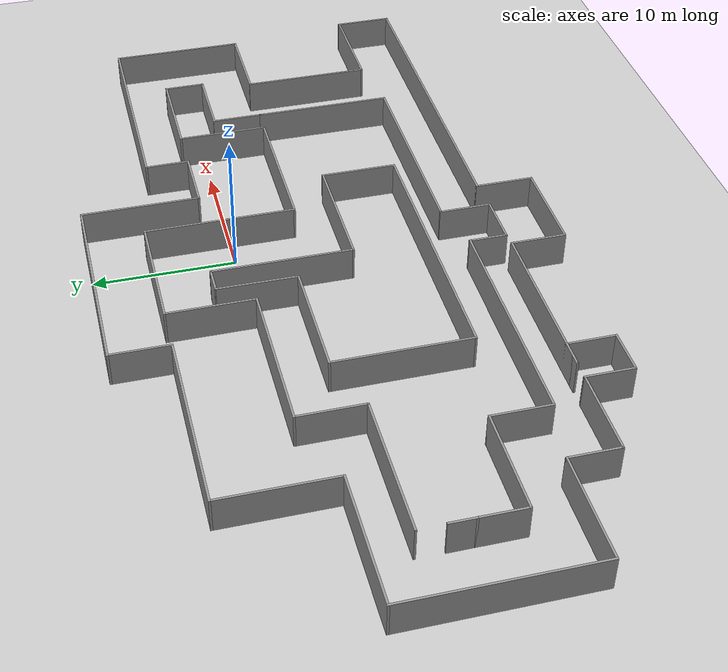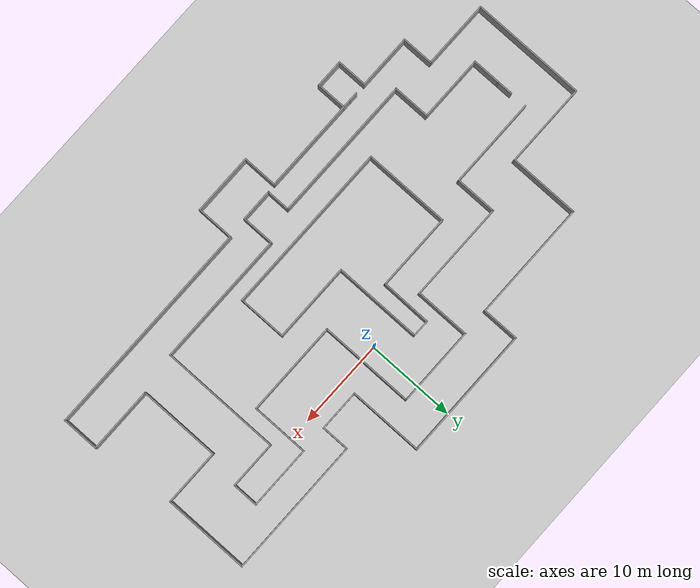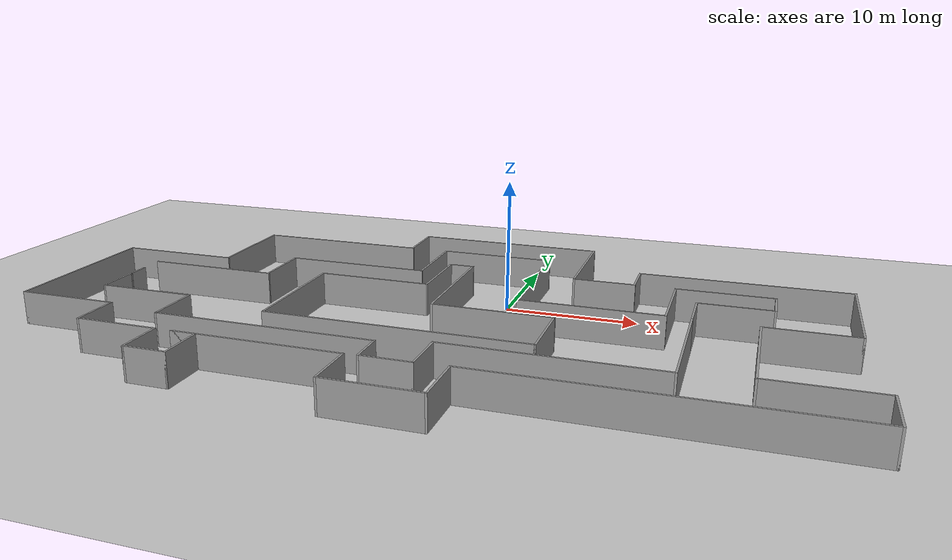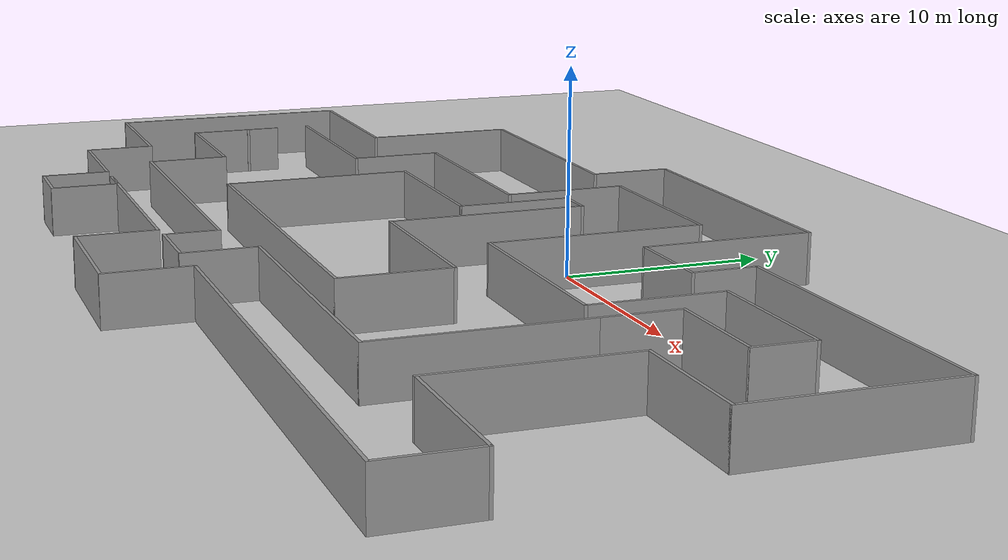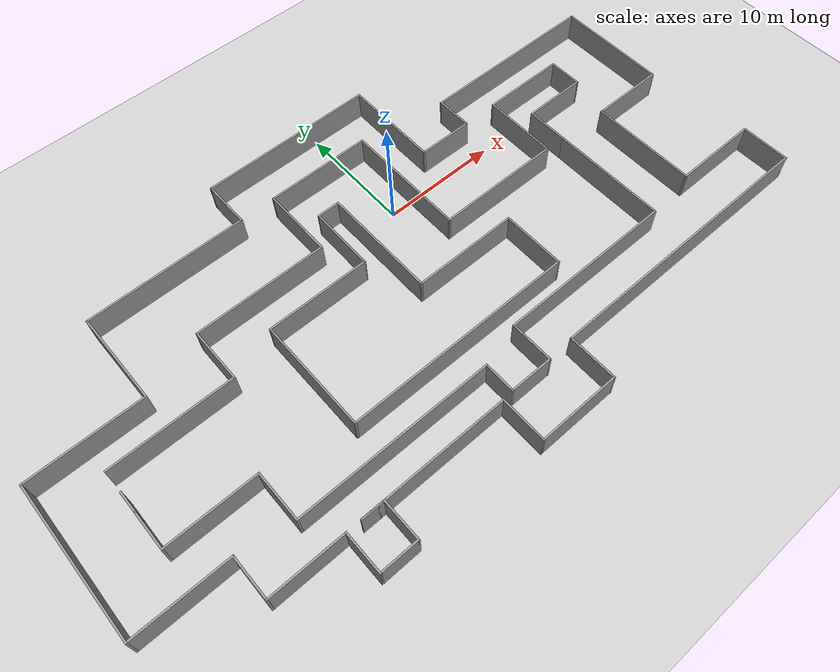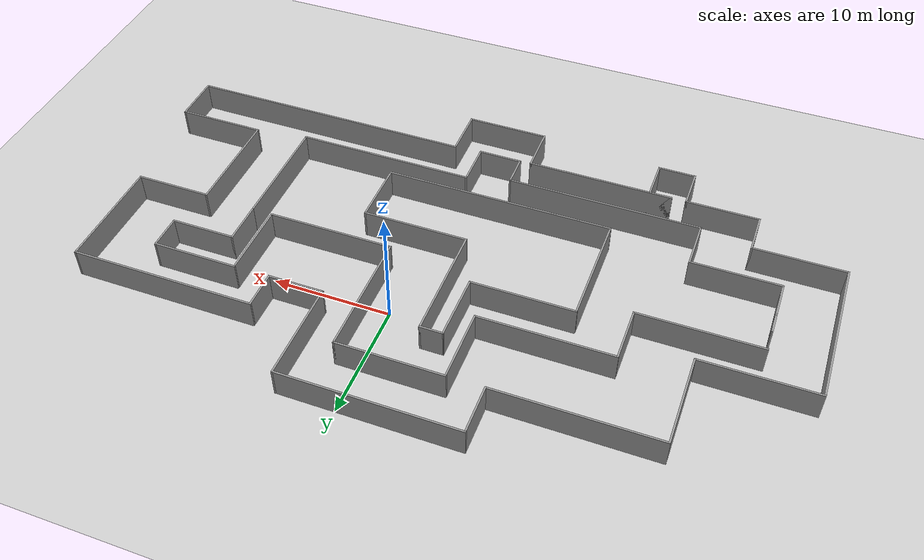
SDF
<sdf version="1.6">
 <world name="default">
  <light name="sun" type="directional">
   <pose>0 0 10 0 -0 0</pose>
   <diffuse>0.8 0.8 0.8 1</diffuse>
   <specular>0.2 0.2 0.2 1</specular>
   <attenuation>
    <range>1000</range>
    <constant>0.9</constant>
    <linear>0.01</linear>
    <quadratic>0.001</quadratic>
   </attenuation>
   <direction>-0.5 0.1 -0.9</direction>
  </light>
  <model name="ground_plane">
   <static>1</static>
   <link name="link">
    <collision name="collision">
     <geometry><plane><normal>0 0 1</normal><size>100 100</size></plane></geometry>
     <surface><friction><ode><mu>100</mu><mu2>50</mu2></ode></friction></surface>
    </collision>
    <visual name="visual">
     <cast_shadows>0</cast_shadows>
     <geometry><plane><normal>0 0 1</normal><size>100 100</size></plane></geometry>
     <material>
      <script><uri>file://media/materials/scripts/gazebo.material</uri><name>Gazebo/Grey</name></script>
     </material>
    </visual>
   </link>
  </model>
  <gravity>0 0 -9.8</gravity>
  <magnetic_field>6e-06 2.3e-05 -4.2e-05</magnetic_field>
  <atmosphere type="adiabatic"/>
  <physics name="default_physics" default="0" type="ode">
   <max_step_size>0.001</max_step_size>
   <real_time_factor>1</real_time_factor>
   <real_time_update_rate>1000</real_time_update_rate>
  </physics>
  <scene><ambient>0.4 0.4 0.4 1</ambient><background>0.7 0.7 0.7 1</background><shadows>1</shadows></scene>
  <audio><device>default</device></audio>
  <spherical_coordinates>
   <surface_model>EARTH_WGS84</surface_model>
   <latitude_deg>0</latitude_deg>
   <longitude_deg>0</longitude_deg>
   <elevation>0</elevation>
   <heading_deg>0</heading_deg>
  </spherical_coordinates>
  <model name="Untitled">
   <pose>-3.37299 -6.07161 0 0 -0 0</pose>
   <link name="Wall_35">
    <collision name="Wall_35_Collision">
     <geometry><box><size>6.25 0.15 2.5</size></box></geometry>
     <pose>0 0 1.25 0 -0 0</pose>
    </collision>
    <visual name="Wall_35_Visual">
     <pose>0 0 1.25 0 -0 0</pose>
     <geometry><box><size>6.25 0.15 2.5</size></box></geometry>
     <material>
      <script><uri>file://media/materials/scripts/gazebo.material</uri><name>Gazebo/Grey</name></script>
      <ambient>1 1 1 1</ambient>
     </material>
     <meta><layer>0</layer></meta>
    </visual>
    <pose>-18.725 -12.225 0 0 -0 0</pose>
   </link>
   <link name="Wall_36">
    <collision name="Wall_36_Collision">
     <geometry><box><size>3.5 0.15 2.5</size></box></geometry>
     <pose>0 0 1.25 0 -0 0</pose>
    </collision>
    <visual name="Wall_36_Visual">
     <pose>0 0 1.25 0 -0 0</pose>
     <geometry><box><size>3.5 0.15 2.5</size></box></geometry>
     <material>
      <script><uri>file://media/materials/scripts/gazebo.material</uri><name>Gazebo/Grey</name></script>
      <ambient>1 1 1 1</ambient>
     </material>
     <meta><layer>0</layer></meta>
    </visual>
    <pose>-15.675 -13.9 0 0 -0 -1.5708</pose>
   </link>
   <link name="Wall_37">
    <collision name="Wall_37_Collision">
     <geometry><box><size>3.25 0.15 2.5</size></box></geometry>
     <pose>0 0 1.25 0 -0 0</pose>
    </collision>
    <visual name="Wall_37_Visual">
     <pose>0 0 1.25 0 -0 0</pose>
     <geometry><box><size>3.25 0.15 2.5</size></box></geometry>
     <material>
      <script><uri>file://media/materials/scripts/gazebo.material</uri><name>Gazebo/Grey</name></script>
      <ambient>1 1 1 1</ambient>
     </material>
     <meta><layer>0</layer></meta>
    </visual>
    <pose>-14.125 -15.575 0 0 -0 0</pose>
   </link>
   <link name="Wall_38">
    <collision name="Wall_38_Collision">
     <geometry><box><size>3.5 0.15 2.5</size></box></geometry>
     <pose>0 0 1.25 0 -0 0</pose>
    </collision>
    <visual name="Wall_38_Visual">
     <pose>0 0 1.25 0 -0 0</pose>
     <geometry><box><size>3.5 0.15 2.5</size></box></geometry>
     <material>
      <script><uri>file://media/materials/scripts/gazebo.material</uri><name>Gazebo/Grey</name></script>
      <ambient>1 1 1 1</ambient>
     </material>
     <meta><layer>0</layer></meta>
    </visual>
    <pose>-12.575 -13.9 0 0 -0 1.5708</pose>
   </link>
   <link name="Wall_39">
    <collision name="Wall_39_Collision">
     <geometry><box><size>2 0.15 2.5</size></box></geometry>
     <pose>0 0 1.25 0 -0 0</pose>
    </collision>
    <visual name="Wall_39_Visual">
     <pose>0 0 1.25 0 -0 0</pose>
     <geometry><box><size>2 0.15 2.5</size></box></geometry>
     <material>
      <script><uri>file://media/materials/scripts/gazebo.material</uri><name>Gazebo/Grey</name></script>
      <ambient>1 1 1 1</ambient>
     </material>
     <meta><layer>0</layer></meta>
    </visual>
    <pose>-13.5 -12.225 0 0 -0 3.14159</pose>
   </link>
   <link name="Wall_40">
    <collision name="Wall_40_Collision">
     <geometry><box><size>12.5 0.15 2.5</size></box></geometry>
     <pose>0 0 1.25 0 -0 0</pose>
    </collision>
    <visual name="Wall_40_Visual">
     <pose>0 0 1.25 0 -0 0</pose>
     <geometry><box><size>12.5 0.15 2.5</size></box></geometry>
     <material>
      <script><uri>file://media/materials/scripts/gazebo.material</uri><name>Gazebo/Grey</name></script>
      <ambient>1 1 1 1</ambient>
     </material>
     <meta><layer>0</layer></meta>
    </visual>
    <pose>-8.25 -12.225 0 0 -0 0</pose>
   </link>
   <link name="Wall_41">
    <collision name="Wall_41_Collision">
     <geometry><box><size>4 0.15 2.5</size></box></geometry>
     <pose>0 0 1.25 0 -0 0</pose>
    </collision>
    <visual name="Wall_41_Visual">
     <pose>0 0 1.25 0 -0 0</pose>
     <geometry><box><size>4 0.15 2.5</size></box></geometry>
     <material>
      <script><uri>file://media/materials/scripts/gazebo.material</uri><name>Gazebo/Grey</name></script>
      <ambient>1 1 1 1</ambient>
     </material>
     <meta><layer>0</layer></meta>
    </visual>
    <pose>-2.075 -14.15 0 0 -0 -1.5708</pose>
   </link>
   <link name="Wall_42">
    <collision name="Wall_42_Collision">
     <geometry><box><size>7 0.15 2.5</size></box></geometry>
     <pose>0 0 1.25 0 -0 0</pose>
    </collision>
    <visual name="Wall_42_Visual">
     <pose>0 0 1.25 0 -0 0</pose>
     <geometry><box><size>7 0.15 2.5</size></box></geometry>
     <material>
      <script><uri>file://media/materials/scripts/gazebo.material</uri><name>Gazebo/Grey</name></script>
      <ambient>1 1 1 1</ambient>
     </material>
     <meta><layer>0</layer></meta>
    </visual>
    <pose>1.35 -16.075 0 0 -0 0</pose>
   </link>
   <link name="Wall_43">
    <collision name="Wall_43_Collision">
     <geometry><box><size>4.25 0.15 2.5</size></box></geometry>
     <pose>0 0 1.25 0 -0 0</pose>
    </collision>
    <visual name="Wall_43_Visual">
     <pose>0 0 1.25 0 -0 0</pose>
     <geometry><box><size>4.25 0.15 2.5</size></box></geometry>
     <material>
      <script><uri>file://media/materials/scripts/gazebo.material</uri><name>Gazebo/Grey</name></script>
      <ambient>1 1 1 1</ambient>
     </material>
     <meta><layer>0</layer></meta>
    </visual>
    <pose>4.775 -14.025 0 0 -0 1.5708</pose>
   </link>
   <link name="Wall_44">
    <collision name="Wall_44_Collision">
     <geometry><box><size>24.75 0.15 2.5</size></box></geometry>
     <pose>0 0 1.25 0 -0 0</pose>
    </collision>
    <visual name="Wall_44_Visual">
     <pose>0 0 1.25 0 -0 0</pose>
     <geometry><box><size>24.75 0.15 2.5</size></box></geometry>
     <material>
      <script><uri>file://media/materials/scripts/gazebo.material</uri><name>Gazebo/Grey</name></script>
      <ambient>1 1 1 1</ambient>
     </material>
     <meta><layer>0</layer></meta>
    </visual>
    <pose>17.075 -11.975 0 0 -0 0</pose>
   </link>
   <link name="Wall_45">
    <collision name="Wall_45_Collision">
     <geometry><box><size>4.25 0.15 2.5</size></box></geometry>
     <pose>0 0 1.25 0 -0 0</pose>
    </collision>
    <visual name="Wall_45_Visual">
     <pose>0 0 1.25 0 -0 0</pose>
     <geometry><box><size>4.25 0.15 2.5</size></box></geometry>
     <material>
      <script><uri>file://media/materials/scripts/gazebo.material</uri><name>Gazebo/Grey</name></script>
      <ambient>1 1 1 1</ambient>
     </material>
     <meta><layer>0</layer></meta>
    </visual>
    <pose>29.375 -9.925 0 0 -0 1.5708</pose>
   </link>
   <link name="Wall_46">
    <collision name="Wall_46_Collision">
     <geometry><box><size>7.5 0.15 2.5</size></box></geometry>
     <pose>0 0 1.25 0 -0 0</pose>
    </collision>
    <visual name="Wall_46_Visual">
     <pose>0 0 1.25 0 -0 0</pose>
     <geometry><box><size>7.5 0.15 2.5</size></box></geometry>
     <material>
      <script><uri>file://media/materials/scripts/gazebo.material</uri><name>Gazebo/Grey</name></script>
      <ambient>1 1 1 1</ambient>
     </material>
     <meta><layer>0</layer></meta>
    </visual>
    <pose>25.7 -7.875 0 0 -0 3.14159</pose>
   </link>
   <link name="Wall_47">
    <collision name="Wall_47_Collision">
     <geometry><box><size>9.25 0.15 2.5</size></box></geometry>
     <pose>0 0 1.25 0 -0 0</pose>
    </collision>
    <visual name="Wall_47_Visual">
     <pose>0 0 1.25 0 -0 0</pose>
     <geometry><box><size>9.25 0.15 2.5</size></box></geometry>
     <material>
      <script><uri>file://media/materials/scripts/gazebo.material</uri><name>Gazebo/Grey</name></script>
      <ambient>1 1 1 1</ambient>
     </material>
     <meta><layer>0</layer></meta>
    </visual>
    <pose>22.025 -3.325 0 0 -0 1.5708</pose>
   </link>
   <link name="Wall_48">
    <collision name="Wall_48_Collision">
     <geometry><box><size>6.5 0.15 2.5</size></box></geometry>
     <pose>0 0 1.25 0 -0 0</pose>
    </collision>
    <visual name="Wall_48_Visual">
     <pose>0 0 1.25 0 -0 0</pose>
     <geometry><box><size>6.5 0.15 2.5</size></box></geometry>
     <material>
      <script><uri>file://media/materials/scripts/gazebo.material</uri><name>Gazebo/Grey</name></script>
      <ambient>1 1 1 1</ambient>
     </material>
     <meta><layer>0</layer></meta>
    </visual>
    <pose>25.2 1.225 0 0 -0 0</pose>
   </link>
   <link name="Wall_49">
    <collision name="Wall_49_Collision">
     <geometry><box><size>9.75 0.15 2.5</size></box></geometry>
     <pose>0 0 1.25 0 -0 0</pose>
    </collision>
    <visual name="Wall_49_Visual">
     <pose>0 0 1.25 0 -0 0</pose>
     <geometry><box><size>9.75 0.15 2.5</size></box></geometry>
     <material>
      <script><uri>file://media/materials/scripts/gazebo.material</uri><name>Gazebo/Grey</name></script>
      <ambient>1 1 1 1</ambient>
     </material>
     <meta><layer>0</layer></meta>
    </visual>
    <pose>28.375 6.025 0 0 -0 1.5708</pose>
   </link>
   <link name="Wall_50">
    <collision name="Wall_50_Collision">
     <geometry><box><size>15.75 0.15 2.5</size></box></geometry>
     <pose>0 0 1.25 0 -0 0</pose>
    </collision>
    <visual name="Wall_50_Visual">
     <pose>0 0 1.25 0 -0 0</pose>
     <geometry><box><size>15.75 0.15 2.5</size></box></geometry>
     <material>
      <script><uri>file://media/materials/scripts/gazebo.material</uri><name>Gazebo/Grey</name></script>
      <ambient>1 1 1 1</ambient>
     </material>
     <meta><layer>0</layer></meta>
    </visual>
    <pose>20.575 10.825 0 0 -0 3.14159</pose>
   </link>
   <link name="Wall_51">
    <collision name="Wall_51_Collision">
     <geometry><box><size>3.25 0.15 2.5</size></box></geometry>
     <pose>0 0 1.25 0 -0 0</pose>
    </collision>
    <visual name="Wall_51_Visual">
     <pose>0 0 1.25 0 -0 0</pose>
     <geometry><box><size>3.25 0.15 2.5</size></box></geometry>
     <material>
      <script><uri>file://media/materials/scripts/gazebo.material</uri><name>Gazebo/Grey</name></script>
      <ambient>1 1 1 1</ambient>
     </material>
     <meta><layer>0</layer></meta>
    </visual>
    <pose>12.775 9.275 0 0 -0 -1.5708</pose>
   </link>
   <link name="Wall_52">
    <collision name="Wall_52_Collision">
     <geometry><box><size>4.75 0.15 2.5</size></box></geometry>
     <pose>0 0 1.25 0 -0 0</pose>
    </collision>
    <visual name="Wall_52_Visual">
     <pose>0 0 1.25 0 -0 0</pose>
     <geometry><box><size>4.75 0.15 2.5</size></box></geometry>
     <material>
      <script><uri>file://media/materials/scripts/gazebo.material</uri><name>Gazebo/Grey</name></script>
      <ambient>1 1 1 1</ambient>
     </material>
     <meta><layer>0</layer></meta>
    </visual>
    <pose>10.475 7.725 0 0 -0 3.14159</pose>
   </link>
   <link name="Wall_53">
    <collision name="Wall_53_Collision">
     <geometry><box><size>8.5 0.15 2.5</size></box></geometry>
     <pose>0 0 1.25 0 -0 0</pose>
    </collision>
    <visual name="Wall_53_Visual">
     <pose>0 0 1.25 0 -0 0</pose>
     <geometry><box><size>8.5 0.15 2.5</size></box></geometry>
     <material>
      <script><uri>file://media/materials/scripts/gazebo.material</uri><name>Gazebo/Grey</name></script>
      <ambient>1 1 1 1</ambient>
     </material>
     <meta><layer>0</layer></meta>
    </visual>
    <pose>8.175 11.9 0 0 -0 1.5708</pose>
   </link>
   <link name="Wall_54">
    <collision name="Wall_54_Collision">
     <geometry><box><size>15 0.15 2.5</size></box></geometry>
     <pose>0 0 1.25 0 -0 0</pose>
    </collision>
    <visual name="Wall_54_Visual">
     <pose>0 0 1.25 0 -0 0</pose>
     <geometry><box><size>15 0.15 2.5</size></box></geometry>
     <material>
      <script><uri>file://media/materials/scripts/gazebo.material</uri><name>Gazebo/Grey</name></script>
      <ambient>1 1 1 1</ambient>
     </material>
     <meta><layer>0</layer></meta>
    </visual>
    <pose>0.75 16.075 0 0 -0 3.14159</pose>
   </link>
   <link name="Wall_55">
    <collision name="Wall_55_Collision">
     <geometry><box><size>4.25 0.15 2.5</size></box></geometry>
     <pose>0 0 1.25 0 -0 0</pose>
    </collision>
    <visual name="Wall_55_Visual">
     <pose>0 0 1.25 0 -0 0</pose>
     <geometry><box><size>4.25 0.15 2.5</size></box></geometry>
     <material>
      <script><uri>file://media/materials/scripts/gazebo.material</uri><name>Gazebo/Grey</name></script>
      <ambient>1 1 1 1</ambient>
     </material>
     <meta><layer>0</layer></meta>
    </visual>
    <pose>-6.675 14.025 0 0 -0 -1.5708</pose>
   </link>
   <link name="Wall_56">
    <collision name="Wall_56_Collision">
     <geometry><box><size>13.5 0.15 2.5</size></box></geometry>
     <pose>0 0 1.25 0 -0 0</pose>
    </collision>
    <visual name="Wall_56_Visual">
     <pose>0 0 1.25 0 -0 0</pose>
     <geometry><box><size>13.5 0.15 2.5</size></box></geometry>
     <material>
      <script><uri>file://media/materials/scripts/gazebo.material</uri><name>Gazebo/Grey</name></script>
      <ambient>1 1 1 1</ambient>
     </material>
     <meta><layer>0</layer></meta>
    </visual>
    <pose>-13.35 11.975 0 0 -0 3.14159</pose>
   </link>
   <link name="Wall_57">
    <collision name="Wall_57_Collision">
     <geometry><box><size>8 0.15 2.5</size></box></geometry>
     <pose>0 0 1.25 0 -0 0</pose>
    </collision>
    <visual name="Wall_57_Visual">
     <pose>0 0 1.25 0 -0 0</pose>
     <geometry><box><size>8 0.15 2.5</size></box></geometry>
     <material>
      <script><uri>file://media/materials/scripts/gazebo.material</uri><name>Gazebo/Grey</name></script>
      <ambient>1 1 1 1</ambient>
     </material>
     <meta><layer>0</layer></meta>
    </visual>
    <pose>-20.025 8.05 0 0 -0 -1.5708</pose>
   </link>
   <link name="Wall_58">
    <collision name="Wall_58_Collision">
     <geometry><box><size>9.5 0.15 2.5</size></box></geometry>
     <pose>0 0 1.25 0 -0 0</pose>
    </collision>
    <visual name="Wall_58_Visual">
     <pose>0 0 1.25 0 -0 0</pose>
     <geometry><box><size>9.5 0.15 2.5</size></box></geometry>
     <material>
      <script><uri>file://media/materials/scripts/gazebo.material</uri><name>Gazebo/Grey</name></script>
      <ambient>1 1 1 1</ambient>
     </material>
     <meta><layer>0</layer></meta>
    </visual>
    <pose>-24.7 4.125 0 0 -0 3.14159</pose>
   </link>
   <link name="Wall_59">
    <collision name="Wall_59_Collision">
     <geometry><box><size>13 0.15 2.5</size></box></geometry>
     <pose>0 0 1.25 0 -0 0</pose>
    </collision>
    <visual name="Wall_59_Visual">
     <pose>0 0 1.25 0 -0 0</pose>
     <geometry><box><size>13 0.15 2.5</size></box></geometry>
     <material>
      <script><uri>file://media/materials/scripts/gazebo.material</uri><name>Gazebo/Grey</name></script>
      <ambient>1 1 1 1</ambient>
     </material>
     <meta><layer>0</layer></meta>
    </visual>
    <pose>-29.375 -2.3 0 0 -0 -1.5708</pose>
   </link>
   <link name="Wall_60">
    <collision name="Wall_60_Collision">
     <geometry><box><size>7.75 0.15 2.5</size></box></geometry>
     <pose>0 0 1.25 0 -0 0</pose>
    </collision>
    <visual name="Wall_60_Visual">
     <pose>0 0 1.25 0 -0 0</pose>
     <geometry><box><size>7.75 0.15 2.5</size></box></geometry>
     <material>
      <script><uri>file://media/materials/scripts/gazebo.material</uri><name>Gazebo/Grey</name></script>
      <ambient>1 1 1 1</ambient>
     </material>
     <meta><layer>0</layer></meta>
    </visual>
    <pose>-25.575 -8.725 0 0 -0 0</pose>
   </link>
   <link name="Wall_61">
    <collision name="Wall_61_Collision">
     <geometry><box><size>3.65 0.15 2.5</size></box></geometry>
     <pose>0 0 1.25 0 -0 0</pose>
    </collision>
    <visual name="Wall_61_Visual">
     <pose>0 0 1.25 0 -0 0</pose>
     <geometry><box><size>3.65 0.15 2.5</size></box></geometry>
     <material>
      <script><uri>file://media/materials/scripts/gazebo.material</uri><name>Gazebo/Grey</name></script>
      <ambient>1 1 1 1</ambient>
     </material>
     <meta><layer>0</layer></meta>
    </visual>
    <pose>-21.775 -10.475 0 0 -0 -1.5708</pose>
   </link>
   <link name="Wall_63">
    <collision name="Wall_63_Collision">
     <geometry><box><size>5 0.15 2.5</size></box></geometry>
     <pose>0 0 1.25 0 -0 0</pose>
    </collision>
    <visual name="Wall_63_Visual">
     <pose>0 0 1.25 0 -0 0</pose>
     <geometry><box><size>5 0.15 2.5</size></box></geometry>
     <material>
      <script><uri>file://media/materials/scripts/gazebo.material</uri><name>Gazebo/Grey</name></script>
      <ambient>1 1 1 1</ambient>
     </material>
     <meta><layer>0</layer></meta>
    </visual>
    <pose>-24.8291 -3.01391 0 0 -0 -1.5708</pose>
   </link>
   <link name="Wall_64">
    <collision name="Wall_64_Collision">
     <geometry><box><size>7.5 0.15 2.5</size></box></geometry>
     <pose>0 0 1.25 0 -0 0</pose>
    </collision>
    <visual name="Wall_64_Visual">
     <pose>0 0 1.25 0 -0 0</pose>
     <geometry><box><size>7.5 0.15 2.5</size></box></geometry>
     <material>
      <script><uri>file://media/materials/scripts/gazebo.material</uri><name>Gazebo/Grey</name></script>
      <ambient>1 1 1 1</ambient>
     </material>
     <meta><layer>0</layer></meta>
    </visual>
    <pose>-21.1541 -5.43891 0 0 -0 0</pose>
   </link>
   <link name="Wall_65">
    <collision name="Wall_65_Collision">
     <geometry><box><size>4.25 0.15 2.5</size></box></geometry>
     <pose>0 0 1.25 0 -0 0</pose>
    </collision>
    <visual name="Wall_65_Visual">
     <pose>0 0 1.25 0 -0 0</pose>
     <geometry><box><size>4.25 0.15 2.5</size></box></geometry>
     <material>
      <script><uri>file://media/materials/scripts/gazebo.material</uri><name>Gazebo/Grey</name></script>
      <ambient>1 1 1 1</ambient>
     </material>
     <meta><layer>0</layer></meta>
    </visual>
    <pose>-17.4791 -7.48891 0 0 -0 -1.5708</pose>
   </link>
   <link name="Wall_66">
    <collision name="Wall_66_Collision">
     <geometry><box><size>16.5 0.15 2.5</size></box></geometry>
     <pose>0 0 1.25 0 -0 0</pose>
    </collision>
    <visual name="Wall_66_Visual">
     <pose>0 0 1.25 0 -0 0</pose>
     <geometry><box><size>16.5 0.15 2.5</size></box></geometry>
     <material>
      <script><uri>file://media/materials/scripts/gazebo.material</uri><name>Gazebo/Grey</name></script>
      <ambient>1 1 1 1</ambient>
     </material>
     <meta><layer>0</layer></meta>
    </visual>
    <pose>-9.3041 -9.53891 0 0 -0 0</pose>
   </link>
   <link name="Wall_67">
    <collision name="Wall_67_Collision">
     <geometry><box><size>2.75 0.15 2.5</size></box></geometry>
     <pose>0 0 1.25 0 -0 0</pose>
    </collision>
    <visual name="Wall_67_Visual">
     <pose>0 0 1.25 0 -0 0</pose>
     <geometry><box><size>2.75 0.15 2.5</size></box></geometry>
     <material>
      <script><uri>file://media/materials/scripts/gazebo.material</uri><name>Gazebo/Grey</name></script>
      <ambient>1 1 1 1</ambient>
     </material>
     <meta><layer>0</layer></meta>
    </visual>
    <pose>-1.1291 -10.8389 0 0 -0 -1.5708</pose>
   </link>
   <link name="Wall_68">
    <collision name="Wall_68_Collision">
     <geometry><box><size>3.75 0.15 2.5</size></box></geometry>
     <pose>0 0 1.25 0 -0 0</pose>
    </collision>
    <visual name="Wall_68_Visual">
     <pose>0 0 1.25 0 -0 0</pose>
     <geometry><box><size>3.75 0.15 2.5</size></box></geometry>
     <material>
      <script><uri>file://media/materials/scripts/gazebo.material</uri><name>Gazebo/Grey</name></script>
      <ambient>1 1 1 1</ambient>
     </material>
     <meta><layer>0</layer></meta>
    </visual>
    <pose>0.670903 -12.1389 0 0 -0 0</pose>
   </link>
   <link name="Wall_69">
    <collision name="Wall_69_Collision">
     <geometry><box><size>3.75 0.15 2.5</size></box></geometry>
     <pose>0 0 1.25 0 -0 0</pose>
    </collision>
    <visual name="Wall_69_Visual">
     <pose>0 0 1.25 0 -0 0</pose>
     <geometry><box><size>3.75 0.15 2.5</size></box></geometry>
     <material>
      <script><uri>file://media/materials/scripts/gazebo.material</uri><name>Gazebo/Grey</name></script>
      <ambient>1 1 1 1</ambient>
     </material>
     <meta><layer>0</layer></meta>
    </visual>
    <pose>2.4709 -10.3389 0 0 -0 1.5708</pose>
   </link>
   <link name="Wall_70">
    <collision name="Wall_70_Collision">
     <geometry><box><size>15.25 0.15 2.5</size></box></geometry>
     <pose>0 0 1.25 0 -0 0</pose>
    </collision>
    <visual name="Wall_70_Visual">
     <pose>0 0 1.25 0 -0 0</pose>
     <geometry><box><size>15.25 0.15 2.5</size></box></geometry>
     <material>
      <script><uri>file://media/materials/scripts/gazebo.material</uri><name>Gazebo/Grey</name></script>
      <ambient>1 1 1 1</ambient>
     </material>
     <meta><layer>0</layer></meta>
    </visual>
    <pose>10.0209 -8.53891 0 0 -0 0</pose>
   </link>
   <link name="Wall_71">
    <collision name="Wall_71_Collision">
     <geometry><box><size>10 0.15 2.5</size></box></geometry>
     <pose>0 0 1.25 0 -0 0</pose>
    </collision>
    <visual name="Wall_71_Visual">
     <pose>0 0 1.25 0 -0 0</pose>
     <geometry><box><size>10 0.15 2.5</size></box></geometry>
     <material>
      <script><uri>file://media/materials/scripts/gazebo.material</uri><name>Gazebo/Grey</name></script>
      <ambient>1 1 1 1</ambient>
     </material>
     <meta><layer>0</layer></meta>
    </visual>
    <pose>17.5709 -3.61391 0 0 -0 1.5708</pose>
   </link>
   <link name="Wall_72">
    <collision name="Wall_72_Collision">
     <geometry><box><size>3.75 0.15 2.5</size></box></geometry>
     <pose>0 0 1.25 0 -0 0</pose>
    </collision>
    <visual name="Wall_72_Visual">
     <pose>0 0 1.25 0 -0 0</pose>
     <geometry><box><size>3.75 0.15 2.5</size></box></geometry>
     <material>
      <script><uri>file://media/materials/scripts/gazebo.material</uri><name>Gazebo/Grey</name></script>
      <ambient>1 1 1 1</ambient>
     </material>
     <meta><layer>0</layer></meta>
    </visual>
    <pose>17.5709 3.11109 0 0 -0 1.5708</pose>
   </link>
   <link name="Wall_73">
    <collision name="Wall_73_Collision">
     <geometry><box><size>5.5 0.15 2.5</size></box></geometry>
     <pose>0 0 1.25 0 -0 0</pose>
    </collision>
    <visual name="Wall_73_Visual">
     <pose>0 0 1.25 0 -0 0</pose>
     <geometry><box><size>5.5 0.15 2.5</size></box></geometry>
     <material>
      <script><uri>file://media/materials/scripts/gazebo.material</uri><name>Gazebo/Grey</name></script>
      <ambient>1 1 1 1</ambient>
     </material>
     <meta><layer>0</layer></meta>
    </visual>
    <pose>20.2459 4.91109 0 0 -0 0</pose>
   </link>
   <link name="Wall_74">
    <collision name="Wall_74_Collision">
     <geometry><box><size>3 0.15 2.5</size></box></geometry>
     <pose>0 0 1.25 0 -0 0</pose>
    </collision>
    <visual name="Wall_74_Visual">
     <pose>0 0 1.25 0 -0 0</pose>
     <geometry><box><size>3 0.15 2.5</size></box></geometry>
     <material>
      <script><uri>file://media/materials/scripts/gazebo.material</uri><name>Gazebo/Grey</name></script>
      <ambient>1 1 1 1</ambient>
     </material>
     <meta><layer>0</layer></meta>
    </visual>
    <pose>22.9209 6.33609 0 0 -0 1.5708</pose>
   </link>
   <link name="Wall_75">
    <collision name="Wall_75_Collision">
     <geometry><box><size>7.25 0.15 2.5</size></box></geometry>
     <pose>0 0 1.25 0 -0 0</pose>
    </collision>
    <visual name="Wall_75_Visual">
     <pose>0 0 1.25 0 -0 0</pose>
     <geometry><box><size>7.25 0.15 2.5</size></box></geometry>
     <material>
      <script><uri>file://media/materials/scripts/gazebo.material</uri><name>Gazebo/Grey</name></script>
      <ambient>1 1 1 1</ambient>
     </material>
     <meta><layer>0</layer></meta>
    </visual>
    <pose>19.3709 7.76109 0 0 -0 3.14159</pose>
   </link>
   <link name="Wall_76">
    <collision name="Wall_76_Collision">
     <geometry><box><size>6.5 0.15 2.5</size></box></geometry>
     <pose>0 0 1.25 0 -0 0</pose>
    </collision>
    <visual name="Wall_76_Visual">
     <pose>0 0 1.25 0 -0 0</pose>
     <geometry><box><size>6.5 0.15 2.5</size></box></geometry>
     <material>
      <script><uri>file://media/materials/scripts/gazebo.material</uri><name>Gazebo/Grey</name></script>
      <ambient>1 1 1 1</ambient>
     </material>
     <meta><layer>0</layer></meta>
    </visual>
    <pose>15.8209 4.58609 0 0 -0 -1.5708</pose>
   </link>
   <link name="Wall_77">
    <collision name="Wall_77_Collision">
     <geometry><box><size>10.75 0.15 2.5</size></box></geometry>
     <pose>0 0 1.25 0 -0 0</pose>
    </collision>
    <visual name="Wall_77_Visual">
     <pose>0 0 1.25 0 -0 0</pose>
     <geometry><box><size>10.75 0.15 2.5</size></box></geometry>
     <material>
      <script><uri>file://media/materials/scripts/gazebo.material</uri><name>Gazebo/Grey</name></script>
      <ambient>1 1 1 1</ambient>
     </material>
     <meta><layer>0</layer></meta>
    </visual>
    <pose>10.5209 1.41109 0 0 -0 3.14159</pose>
   </link>
   <link name="Wall_78">
    <collision name="Wall_78_Collision">
     <geometry><box><size>10.75 0.15 2.5</size></box></geometry>
     <pose>0 0 1.25 0 -0 0</pose>
    </collision>
    <visual name="Wall_78_Visual">
     <pose>0 0 1.25 0 -0 0</pose>
     <geometry><box><size>10.75 0.15 2.5</size></box></geometry>
     <material>
      <script><uri>file://media/materials/scripts/gazebo.material</uri><name>Gazebo/Grey</name></script>
      <ambient>1 1 1 1</ambient>
     </material>
     <meta><layer>0</layer></meta>
    </visual>
    <pose>5.2209 6.71109 0 0 -0 1.5708</pose>
   </link>
   <link name="Wall_79">
    <collision name="Wall_79_Collision">
     <geometry><box><size>9 0.15 2.5</size></box></geometry>
     <pose>0 0 1.25 0 -0 0</pose>
    </collision>
    <visual name="Wall_79_Visual">
     <pose>0 0 1.25 0 -0 0</pose>
     <geometry><box><size>9 0.15 2.5</size></box></geometry>
     <material>
      <script><uri>file://media/materials/scripts/gazebo.material</uri><name>Gazebo/Grey</name></script>
      <ambient>1 1 1 1</ambient>
     </material>
     <meta><layer>0</layer></meta>
    </visual>
    <pose>0.795903 12.0111 0 0 -0 3.14159</pose>
   </link>
   <link name="Wall_80">
    <collision name="Wall_80_Collision">
     <geometry><box><size>6.25 0.15 2.5</size></box></geometry>
     <pose>0 0 1.25 0 -0 0</pose>
    </collision>
    <visual name="Wall_80_Visual">
     <pose>0 0 1.25 0 -0 0</pose>
     <geometry><box><size>6.25 0.15 2.5</size></box></geometry>
     <material>
      <script><uri>file://media/materials/scripts/gazebo.material</uri><name>Gazebo/Grey</name></script>
      <ambient>1 1 1 1</ambient>
     </material>
     <meta><layer>0</layer></meta>
    </visual>
    <pose>-3.6291 8.96109 0 0 -0 -1.5708</pose>
   </link>
   <link name="Wall_81">
    <collision name="Wall_81_Collision">
     <geometry><box><size>11.25 0.15 2.5</size></box></geometry>
     <pose>0 0 1.25 0 -0 0</pose>
    </collision>
    <visual name="Wall_81_Visual">
     <pose>0 0 1.25 0 -0 0</pose>
     <geometry><box><size>11.25 0.15 2.5</size></box></geometry>
     <material>
      <script><uri>file://media/materials/scripts/gazebo.material</uri><name>Gazebo/Grey</name></script>
      <ambient>1 1 1 1</ambient>
     </material>
     <meta><layer>0</layer></meta>
    </visual>
    <pose>-9.1791 5.91109 0 0 -0 3.14159</pose>
   </link>
   <link name="Wall_82">
    <collision name="Wall_82_Collision">
     <geometry><box><size>4.75 0.15 2.5</size></box></geometry>
     <pose>0 0 1.25 0 -0 0</pose>
    </collision>
    <visual name="Wall_82_Visual">
     <pose>0 0 1.25 0 -0 0</pose>
     <geometry><box><size>4.75 0.15 2.5</size></box></geometry>
     <material>
      <script><uri>file://media/materials/scripts/gazebo.material</uri><name>Gazebo/Grey</name></script>
      <ambient>1 1 1 1</ambient>
     </material>
     <meta><layer>0</layer></meta>
    </visual>
    <pose>-14.7291 3.61109 0 0 -0 -1.5708</pose>
   </link>
   <link name="Wall_83">
    <collision name="Wall_83_Collision">
     <geometry><box><size>10.25 0.15 2.5</size></box></geometry>
     <pose>0 0 1.25 0 -0 0</pose>
    </collision>
    <visual name="Wall_83_Visual">
     <pose>0 0 1.25 0 -0 0</pose>
     <geometry><box><size>10.25 0.15 2.5</size></box></geometry>
     <material>
      <script><uri>file://media/materials/scripts/gazebo.material</uri><name>Gazebo/Grey</name></script>
      <ambient>1 1 1 1</ambient>
     </material>
     <meta><layer>0</layer></meta>
    </visual>
    <pose>-19.7791 1.31109 0 0 -0 3.14159</pose>
   </link>
   <link name="Wall_85">
    <collision name="Wall_85_Collision">
     <geometry><box><size>0.16 0.15 2.5</size></box></geometry>
     <pose>0 0 1.25 0 -0 0</pose>
    </collision>
    <visual name="Wall_85_Visual">
     <pose>0 0 1.25 0 -0 0</pose>
     <geometry><box><size>0.16 0.15 2.5</size></box></geometry>
     <material>
      <script><uri>file://media/materials/scripts/gazebo.material</uri><name>Gazebo/Grey</name></script>
      <ambient>1 1 1 1</ambient>
     </material>
     <meta><layer>0</layer></meta>
    </visual>
    <pose>-24.8241 -2.28891 0 0 -0 0</pose>
   </link>
   <link name="Wall_87">
    <collision name="Wall_87_Collision">
     <geometry><box><size>8.75 0.15 2.5</size></box></geometry>
     <pose>0 0 1.25 0 -0 0</pose>
    </collision>
    <visual name="Wall_87_Visual">
     <pose>0 0 1.25 0 -0 0</pose>
     <geometry><box><size>8.75 0.15 2.5</size></box></geometry>
     <material>
      <script><uri>file://media/materials/scripts/gazebo.material</uri><name>Gazebo/Grey</name></script>
      <ambient>1 1 1 1</ambient>
     </material>
     <meta><layer>0</layer></meta>
    </visual>
    <pose>-6.34532 2.74728 0 0 -0 3.14159</pose>
   </link>
   <link name="Wall_88">
    <collision name="Wall_88_Collision">
     <geometry><box><size>9.75 0.15 2.5</size></box></geometry>
     <pose>0 0 1.25 0 -0 0</pose>
    </collision>
    <visual name="Wall_88_Visual">
     <pose>0 0 1.25 0 -0 0</pose>
     <geometry><box><size>9.75 0.15 2.5</size></box></geometry>
     <material>
      <script><uri>file://media/materials/scripts/gazebo.material</uri><name>Gazebo/Grey</name></script>
      <ambient>1 1 1 1</ambient>
     </material>
     <meta><layer>0</layer></meta>
    </visual>
    <pose>-10.6453 -2.05272 0 0 -0 -1.5708</pose>
   </link>
   <link name="Wall_89">
    <collision name="Wall_89_Collision">
     <geometry><box><size>19.5 0.15 2.5</size></box></geometry>
     <pose>0 0 1.25 0 -0 0</pose>
    </collision>
    <visual name="Wall_89_Visual">
     <pose>0 0 1.25 0 -0 0</pose>
     <geometry><box><size>19.5 0.15 2.5</size></box></geometry>
     <material>
      <script><uri>file://media/materials/scripts/gazebo.material</uri><name>Gazebo/Grey</name></script>
      <ambient>1 1 1 1</ambient>
     </material>
     <meta><layer>0</layer></meta>
    </visual>
    <pose>-0.970324 -6.85272 0 0 -0 0</pose>
   </link>
   <link name="Wall_90">
    <collision name="Wall_90_Collision">
     <geometry><box><size>5.5 0.15 2.5</size></box></geometry>
     <pose>0 0 1.25 0 -0 0</pose>
    </collision>
    <visual name="Wall_90_Visual">
     <pose>0 0 1.25 0 -0 0</pose>
     <geometry><box><size>5.5 0.15 2.5</size></box></geometry>
     <material>
      <script><uri>file://media/materials/scripts/gazebo.material</uri><name>Gazebo/Grey</name></script>
      <ambient>1 1 1 1</ambient>
     </material>
     <meta><layer>0</layer></meta>
    </visual>
    <pose>8.70468 -4.17772 0 0 -0 1.5708</pose>
   </link>
   <link name="Wall_91">
    <collision name="Wall_91_Collision">
     <geometry><box><size>9 0.15 2.5</size></box></geometry>
     <pose>0 0 1.25 0 -0 0</pose>
    </collision>
    <visual name="Wall_91_Visual">
     <pose>0 0 1.25 0 -0 0</pose>
     <geometry><box><size>9 0.15 2.5</size></box></geometry>
     <material>
      <script><uri>file://media/materials/scripts/gazebo.material</uri><name>Gazebo/Grey</name></script>
      <ambient>1 1 1 1</ambient>
     </material>
     <meta><layer>0</layer></meta>
    </visual>
    <pose>4.27968 -1.50272 0 0 -0 3.14159</pose>
   </link>
   <link name="Wall_92">
    <collision name="Wall_92_Collision">
     <geometry><box><size>10 0.15 2.5</size></box></geometry>
     <pose>0 0 1.25 0 -0 0</pose>
    </collision>
    <visual name="Wall_92_Visual">
     <pose>0 0 1.25 0 -0 0</pose>
     <geometry><box><size>10 0.15 2.5</size></box></geometry>
     <material>
      <script><uri>file://media/materials/scripts/gazebo.material</uri><name>Gazebo/Grey</name></script>
      <ambient>1 1 1 1</ambient>
     </material>
     <meta><layer>0</layer></meta>
    </visual>
    <pose>-0.145324 3.42228 0 0 -0 1.5708</pose>
   </link>
   <link name="Wall_93">
    <collision name="Wall_93_Collision">
     <geometry><box><size>2 0.15 2.5</size></box></geometry>
     <pose>0 0 1.25 0 -0 0</pose>
    </collision>
    <visual name="Wall_93_Visual">
     <pose>0 0 1.25 0 -0 0</pose>
     <geometry><box><size>2 0.15 2.5</size></box></geometry>
     <material>
      <script><uri>file://media/materials/scripts/gazebo.material</uri><name>Gazebo/Grey</name></script>
      <ambient>1 1 1 1</ambient>
     </material>
     <meta><layer>0</layer></meta>
    </visual>
    <pose>-1.07032 8.34728 0 0 -0 3.14159</pose>
   </link>
   <link name="Wall_94">
    <collision name="Wall_94_Collision">
     <geometry><box><size>5.75022 0.15 2.5</size></box></geometry>
     <pose>0 0 1.25 0 -0 0</pose>
    </collision>
    <visual name="Wall_94_Visual">
     <pose>0 0 1.25 0 -0 0</pose>
     <geometry><box><size>5.75022 0.15 2.5</size></box></geometry>
     <material>
      <script><uri>file://media/materials/scripts/gazebo.material</uri><name>Gazebo/Grey</name></script>
      <ambient>1 1 1 1</ambient>
     </material>
     <meta><layer>0</layer></meta>
    </visual>
    <pose>-2.02032 5.54728 0 0 -0 -1.57973</pose>
   </link>
   <link name="Wall_95">
    <collision name="Wall_95_Collision">
     <geometry><box><size>0.15 0.15 2.5</size></box></geometry>
     <pose>0 0 1.25 0 -0 0</pose>
    </collision>
    <visual name="Wall_95_Visual">
     <pose>0 0 1.25 0 -0 0</pose>
     <geometry><box><size>0.15 0.15 2.5</size></box></geometry>
     <material>
      <script><uri>file://media/materials/scripts/gazebo.material</uri><name>Gazebo/Grey</name></script>
      <ambient>1 1 1 1</ambient>
     </material>
     <meta><layer>0</layer></meta>
    </visual>
    <pose>-2.04532 2.74728 0 0 -0 0</pose>
   </link>
   <static>1</static>
  </model>
 </world>
</sdf>
